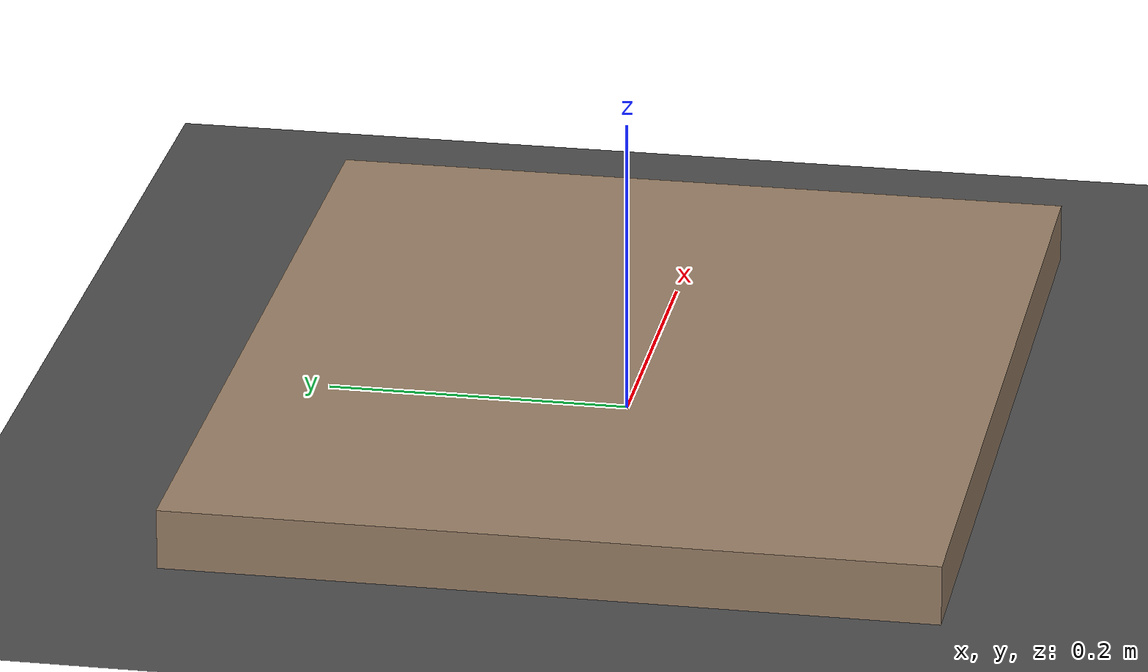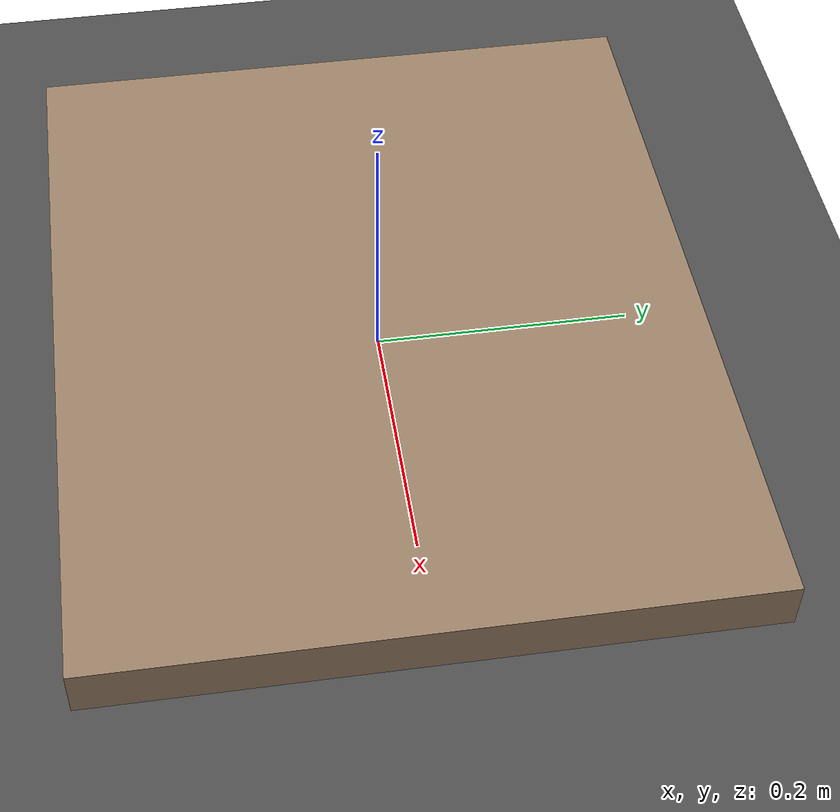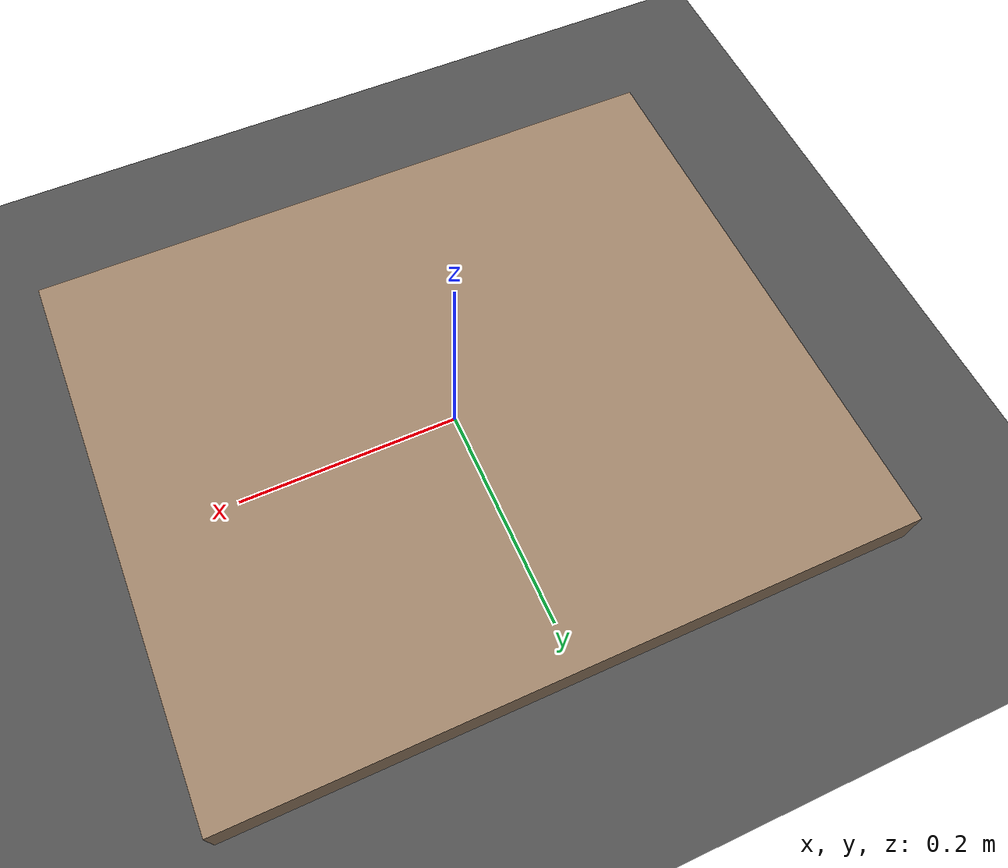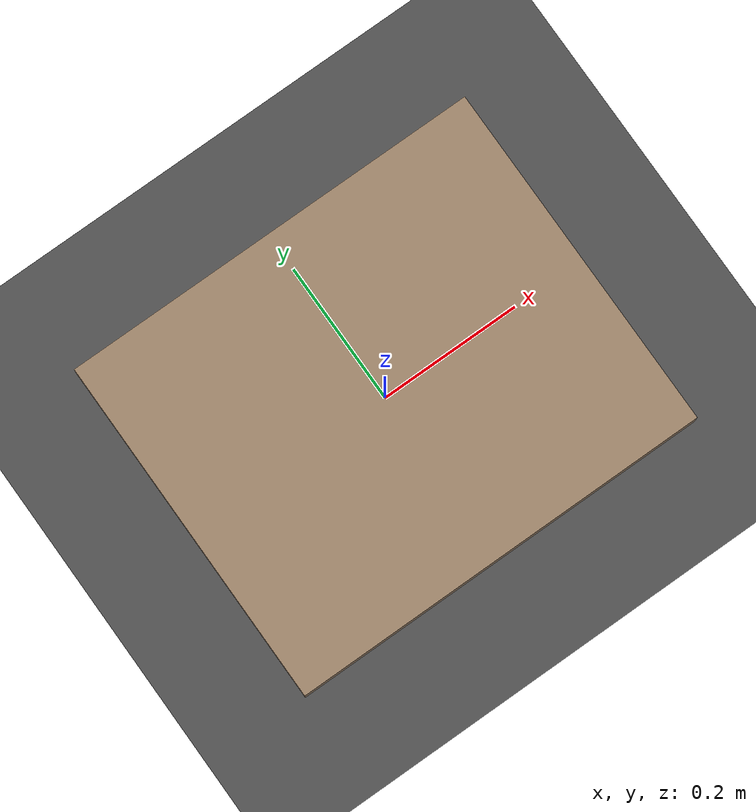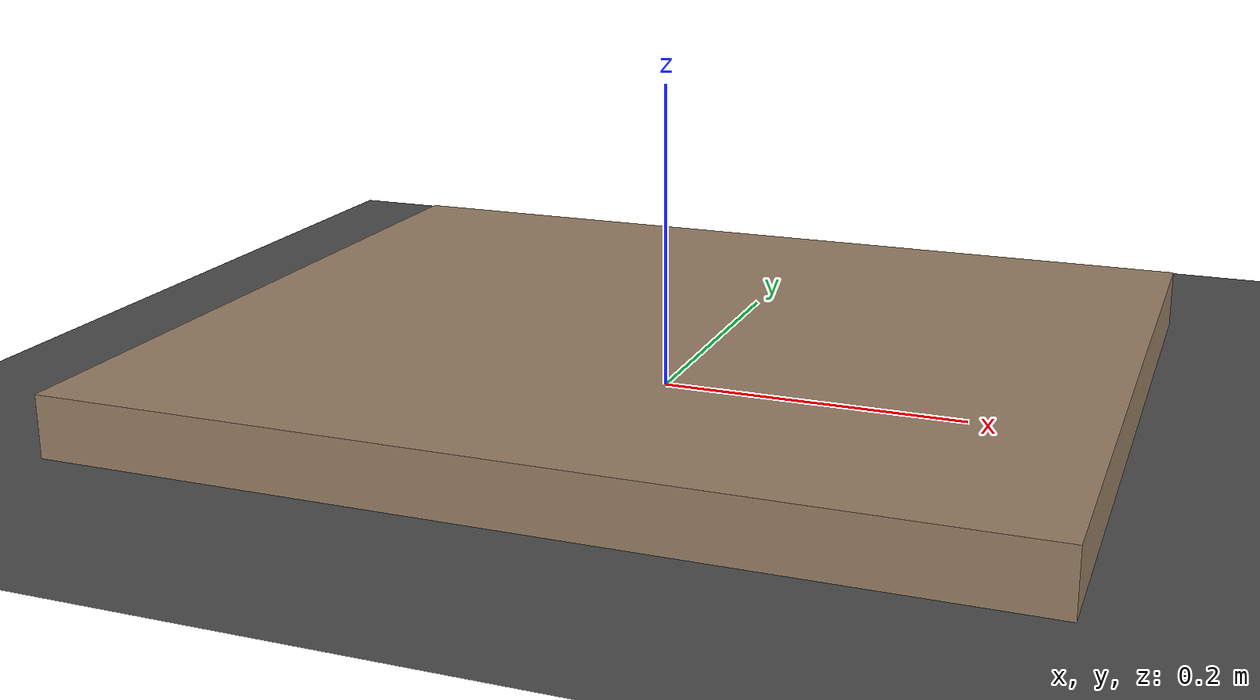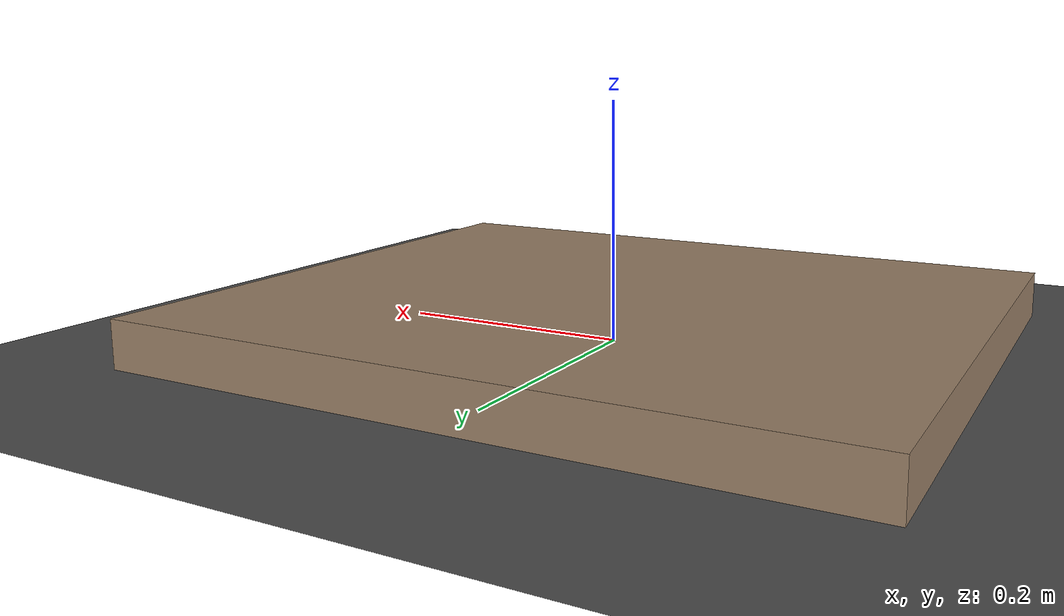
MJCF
<mujoco model="pushing_base">
  <compiler angle="radian" coordinate="local" inertiafromgeom="true"/>
  <option timestep="0.005" gravity="0 0 -9.81" iterations="50" solver="Newton"/>
  <default>
    <joint damping="0.5" armature="0.01"/>
    <geom condim="3" friction="0.8 0.02 0.001" contype="1" conaffinity="1"/>
  </default>
  <worldbody>
    <geom name="ground" type="plane" size="2 2 0.1" rgba="0.3 0.3 0.3 1"
          pos="0 0 0" contype="1" conaffinity="1"/>
    <body name="table" pos="0 0 0">
      <geom name="table_top" type="box" size="0.30 0.25 0.02"
            pos="0 0 0.02" rgba="0.6 0.5 0.4 1"
            contype="1" conaffinity="1" friction="0.6 0.02 0.001"/>
    </body>
  </worldbody>
</mujoco>
